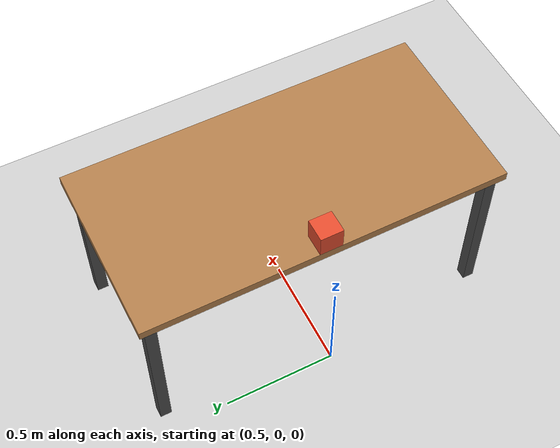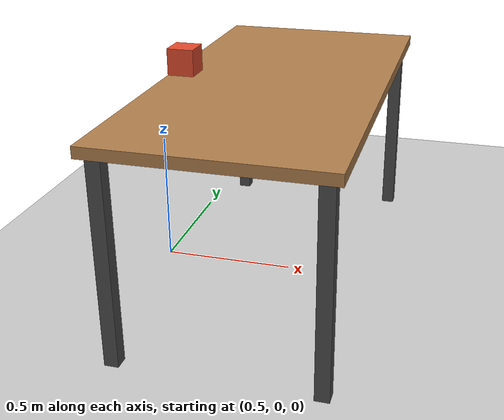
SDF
<?xml version="1.0" ?>
<sdf version="1.6">
  <world name="default">

    <scene>
      <ambient>0.4 0.4 0.4 1</ambient>
      <background>0.7 0.7 0.7 1</background>
      <shadows>0</shadows>
      <grid>false</grid>
      <origin_visual>false</origin_visual>
    </scene>

    <light name="sun" type="directional">
      <cast_shadows>0</cast_shadows>
      <pose>0 0 10 0 0 0</pose>
      <diffuse>0.8 0.8 0.8 1</diffuse>
      <specular>0.2 0.2 0.2 1</specular>
      <direction>-0.5 0.1 -0.9</direction>
    </light>
    <!-- two point lights either side of the table so neither face of the cube is in shade -->
    <light name="lamp_left" type="point">
      <pose>0.95 1.5 3.0 0 0 0</pose>
      <diffuse>0.5 0.5 0.5 1</diffuse>
      <specular>0.1 0.1 0.1 1</specular>
      <attenuation><range>20</range><constant>0.5</constant><linear>0.01</linear><quadratic>0.001</quadratic></attenuation>
      <cast_shadows>0</cast_shadows>
    </light>
    <light name="lamp_right" type="point">
      <pose>0.95 -1.5 3.0 0 0 0</pose>
      <diffuse>0.5 0.5 0.5 1</diffuse>
      <specular>0.1 0.1 0.1 1</specular>
      <attenuation><range>20</range><constant>0.5</constant><linear>0.01</linear><quadratic>0.001</quadratic></attenuation>
      <cast_shadows>0</cast_shadows>
    </light>

    <!-- plain floor; same contact parameters as the workshop's -->
    <model name="ground_plane">
      <static>true</static>
      <link name="link">
        <collision name="collision">
          <geometry><plane><normal>0 0 1</normal><size>100 100</size></plane></geometry>
          <surface>
            <friction><ode><mu>100</mu><mu2>50</mu2></ode></friction>
          </surface>
        </collision>
        <visual name="visual">
          <cast_shadows>false</cast_shadows>
          <geometry><plane><normal>0 0 1</normal><size>100 100</size></plane></geometry>
          <material>
            <script>
              <uri>file://media/materials/scripts/gazebo.material</uri>
              <name>Gazebo/Grey</name>
            </script>
          </material>
        </visual>
      </link>
    </model>

    <!-- The table. Top surface at z = 0.775: a 40 mm slab centred at 0.755 on
         four 50 mm legs. 1.6 m along y (the robot faces +x, so the long side
         faces the robot), 0.8 m deep. -->
    <model name="practice_table">
      <static>true</static>
      <pose>0.95 0 0 0 0 0</pose>
      <link name="link">
        <collision name="top">
          <pose>0 0 0.755 0 0 0</pose>
          <geometry><box><size>0.8 1.6 0.04</size></box></geometry>
          <surface>
            <friction><ode><mu>1.0</mu><mu2>1.0</mu2></ode></friction>
          </surface>
        </collision>
        <visual name="top_visual">
          <pose>0 0 0.755 0 0 0</pose>
          <geometry><box><size>0.8 1.6 0.04</size></box></geometry>
          <material>
            <script>
              <uri>file://media/materials/scripts/gazebo.material</uri>
              <name>Gazebo/Wood</name>
            </script>
          </material>
        </visual>
        <collision name="leg_fl"><pose> 0.35  0.75 0.3675 0 0 0</pose><geometry><box><size>0.05 0.05 0.735</size></box></geometry></collision>
        <collision name="leg_fr"><pose> 0.35 -0.75 0.3675 0 0 0</pose><geometry><box><size>0.05 0.05 0.735</size></box></geometry></collision>
        <collision name="leg_bl"><pose>-0.35  0.75 0.3675 0 0 0</pose><geometry><box><size>0.05 0.05 0.735</size></box></geometry></collision>
        <collision name="leg_br"><pose>-0.35 -0.75 0.3675 0 0 0</pose><geometry><box><size>0.05 0.05 0.735</size></box></geometry></collision>
        <visual name="leg_fl_v"><pose> 0.35  0.75 0.3675 0 0 0</pose><geometry><box><size>0.05 0.05 0.735</size></box></geometry><material><script><uri>file://media/materials/scripts/gazebo.material</uri><name>Gazebo/DarkGrey</name></script></material></visual>
        <visual name="leg_fr_v"><pose> 0.35 -0.75 0.3675 0 0 0</pose><geometry><box><size>0.05 0.05 0.735</size></box></geometry><material><script><uri>file://media/materials/scripts/gazebo.material</uri><name>Gazebo/DarkGrey</name></script></material></visual>
        <visual name="leg_bl_v"><pose>-0.35  0.75 0.3675 0 0 0</pose><geometry><box><size>0.05 0.05 0.735</size></box></geometry><material><script><uri>file://media/materials/scripts/gazebo.material</uri><name>Gazebo/DarkGrey</name></script></material></visual>
        <visual name="leg_br_v"><pose>-0.35 -0.75 0.3675 0 0 0</pose><geometry><box><size>0.05 0.05 0.735</size></box></geometry><material><script><uri>file://media/materials/scripts/gazebo.material</uri><name>Gazebo/DarkGrey</name></script></material></visual>
      </link>
    </model>

    <model name="cube">
      <pose>0.60 0 0.825 0 0 0</pose>
      <link name="link">
        <inertial>
          <mass>0.2</mass>
          <inertia>
            <ixx>3.333e-04</ixx><ixy>0</ixy><ixz>0</ixz>
            <iyy>3.333e-04</iyy><iyz>0</iyz>
            <izz>3.333e-04</izz>
          </inertia>
        </inertial>
        <collision name="collision">
          <geometry><box><size>0.1 0.1 0.1</size></box></geometry>
          <surface>
            <friction><ode><mu>1.5</mu><mu2>1.5</mu2></ode></friction>
            <contact>
              <ode>
                <kp>1000000.0</kp>
                <kd>100.0</kd>
                <max_vel>0.0</max_vel>
                <min_depth>0.001</min_depth>
              </ode>
            </contact>
          </surface>
        </collision>
        <visual name="visual">
          <geometry><box><size>0.1 0.1 0.1</size></box></geometry>
          <material>
            <ambient>0.85 0.25 0.15 1</ambient>
            <diffuse>0.90 0.30 0.18 1</diffuse>
            <specular>0.2 0.2 0.2 1</specular>
          </material>
        </visual>
      </link>
    </model>

    <physics name="default_physics" default="0" type="ode">
      <max_step_size>0.01</max_step_size>
      <real_time_factor>1</real_time_factor>
      <real_time_update_rate>100</real_time_update_rate>
      <ode>
        <solver>
          <type>quick</type>
          <iters>100</iters>
          <precon_iters>0</precon_iters>
          <sor>1</sor>
        </solver>
        <constraints>
          <cfm>0</cfm>
          <erp>0.5</erp>
          <contact_max_correcting_vel>1000</contact_max_correcting_vel>
          <contact_surface_layer>0</contact_surface_layer>
        </constraints>
      </ode>
    </physics>
    <gravity>0 0 -9.8</gravity>

    <!-- The two world plugins used for grasping. -->
    <plugin name="neo_link_attacher" filename="libneo_link_attacher_plugin.so">
      <ros><namespace>/link_attacher</namespace></ros>
    </plugin>
    <plugin name="gazebo_ros_state" filename="libgazebo_ros_state.so">
      <ros><namespace>/gazebo</namespace></ros>
      <update_rate>10.0</update_rate>
    </plugin>

    <gui fullscreen="0">
      <camera name="user_camera">
        <pose>-2.2 -2.4 2.0 0 0.42 0.72</pose>
        <view_controller>orbit</view_controller>
      </camera>
    </gui>

  </world>
</sdf>
